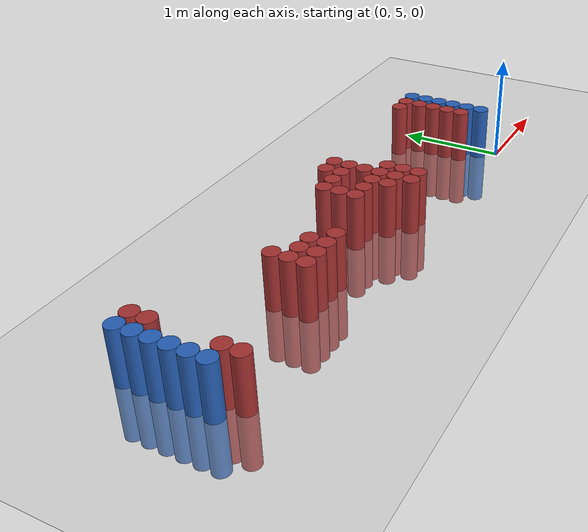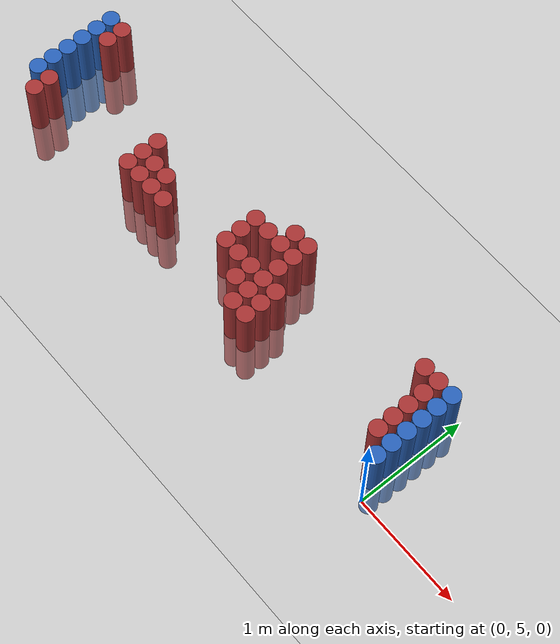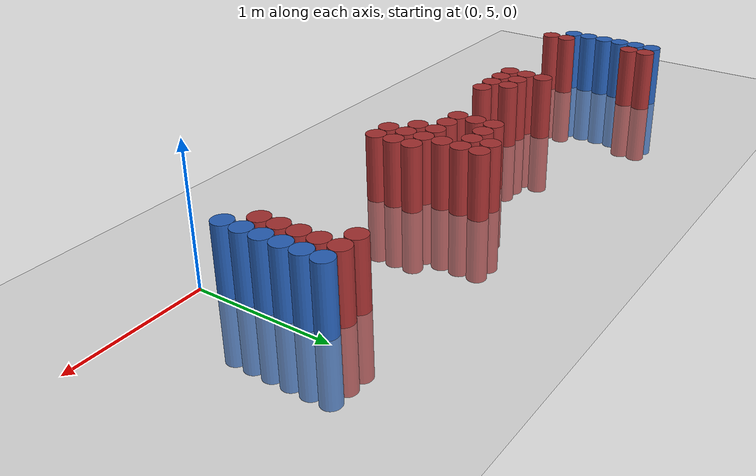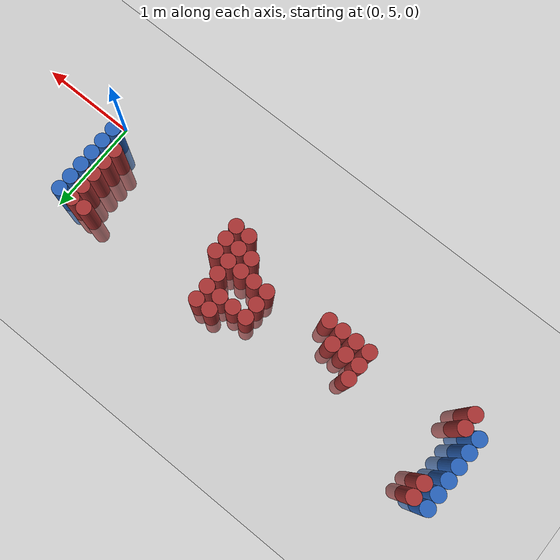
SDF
<sdf version="1.6">
 <world name="default">
  <model name="ground_plane">
   <static>1</static>
   <link name="link">
    <collision name="collision">
     <geometry><plane><normal>0 0 1</normal><size>100 100</size></plane></geometry>
     <surface><friction><ode><mu>100</mu><mu2>50</mu2></ode></friction></surface>
    </collision>
    <visual name="visual">
     <cast_shadows>0</cast_shadows>
     <geometry><plane><normal>0 0 1</normal><size>100 100</size></plane></geometry>
     <material>
      <script><uri>file://media/materials/scripts/gazebo.material</uri><name>Gazebo/Grey</name></script>
     </material>
    </visual>
   </link>
  </model>
  <model name="unit_cylinder_97">
   <static>1</static>
   <pose>-4.425000 5.325000 0.000000 0.000000 0.000000 0.000000</pose>
   <link name="link">
    <inertial>
     <mass>1</mass>
     <inertia><ixx>0.145833</ixx><ixy>0</ixy><ixz>0</ixz><iyy>0.145833</iyy><iyz>0</iyz><izz>0.125</izz></inertia>
    </inertial>
    <collision name="collision">
     <geometry><cylinder><radius>0.075000</radius><length>1</length></cylinder></geometry>
    </collision>
    <visual name="visual">
     <geometry><cylinder><radius>0.075000</radius><length>1</length></cylinder></geometry>
     <material>
      <ambient>0.152000 0.379000 0.720000 1</ambient>
      <diffuse>0.152000 0.379000 0.720000 1</diffuse>
     </material>
     <material>
      <script><name>Gazebo/Grey</name><uri>file://media/materials/scripts/gazebo.material</uri></script>
     </material>
    </visual>
   </link>
  </model>
  <model name="unit_cylinder_98">
   <static>1</static>
   <pose>-4.425000 5.475000 0.000000 0.000000 0.000000 0.000000</pose>
   <link name="link">
    <inertial>
     <mass>1</mass>
     <inertia><ixx>0.145833</ixx><ixy>0</ixy><ixz>0</ixz><iyy>0.145833</iyy><iyz>0</iyz><izz>0.125</izz></inertia>
    </inertial>
    <collision name="collision">
     <geometry><cylinder><radius>0.075000</radius><length>1</length></cylinder></geometry>
    </collision>
    <visual name="visual">
     <geometry><cylinder><radius>0.075000</radius><length>1</length></cylinder></geometry>
     <material>
      <ambient>0.152000 0.379000 0.720000 1</ambient>
      <diffuse>0.152000 0.379000 0.720000 1</diffuse>
     </material>
     <material>
      <script><name>Gazebo/Grey</name><uri>file://media/materials/scripts/gazebo.material</uri></script>
     </material>
    </visual>
   </link>
  </model>
  <model name="unit_cylinder_99">
   <static>1</static>
   <pose>-4.425000 5.625000 0.000000 0.000000 0.000000 0.000000</pose>
   <link name="link">
    <inertial>
     <mass>1</mass>
     <inertia><ixx>0.145833</ixx><ixy>0</ixy><ixz>0</ixz><iyy>0.145833</iyy><iyz>0</iyz><izz>0.125</izz></inertia>
    </inertial>
    <collision name="collision">
     <geometry><cylinder><radius>0.075000</radius><length>1</length></cylinder></geometry>
    </collision>
    <visual name="visual">
     <geometry><cylinder><radius>0.075000</radius><length>1</length></cylinder></geometry>
     <material>
      <ambient>0.152000 0.379000 0.720000 1</ambient>
      <diffuse>0.152000 0.379000 0.720000 1</diffuse>
     </material>
     <material>
      <script><name>Gazebo/Grey</name><uri>file://media/materials/scripts/gazebo.material</uri></script>
     </material>
    </visual>
   </link>
  </model>
  <model name="unit_cylinder_100">
   <static>1</static>
   <pose>-4.425000 5.775000 0.000000 0.000000 0.000000 0.000000</pose>
   <link name="link">
    <inertial>
     <mass>1</mass>
     <inertia><ixx>0.145833</ixx><ixy>0</ixy><ixz>0</ixz><iyy>0.145833</iyy><iyz>0</iyz><izz>0.125</izz></inertia>
    </inertial>
    <collision name="collision">
     <geometry><cylinder><radius>0.075000</radius><length>1</length></cylinder></geometry>
    </collision>
    <visual name="visual">
     <geometry><cylinder><radius>0.075000</radius><length>1</length></cylinder></geometry>
     <material>
      <ambient>0.152000 0.379000 0.720000 1</ambient>
      <diffuse>0.152000 0.379000 0.720000 1</diffuse>
     </material>
     <material>
      <script><name>Gazebo/Grey</name><uri>file://media/materials/scripts/gazebo.material</uri></script>
     </material>
    </visual>
   </link>
  </model>
  <model name="unit_cylinder_101">
   <static>1</static>
   <pose>-4.425000 5.925000 0.000000 0.000000 0.000000 0.000000</pose>
   <link name="link">
    <inertial>
     <mass>1</mass>
     <inertia><ixx>0.145833</ixx><ixy>0</ixy><ixz>0</ixz><iyy>0.145833</iyy><iyz>0</iyz><izz>0.125</izz></inertia>
    </inertial>
    <collision name="collision">
     <geometry><cylinder><radius>0.075000</radius><length>1</length></cylinder></geometry>
    </collision>
    <visual name="visual">
     <geometry><cylinder><radius>0.075000</radius><length>1</length></cylinder></geometry>
     <material>
      <ambient>0.152000 0.379000 0.720000 1</ambient>
      <diffuse>0.152000 0.379000 0.720000 1</diffuse>
     </material>
     <material>
      <script><name>Gazebo/Grey</name><uri>file://media/materials/scripts/gazebo.material</uri></script>
     </material>
    </visual>
   </link>
  </model>
  <model name="unit_cylinder_102">
   <static>1</static>
   <pose>-4.425000 6.075000 0.000000 0.000000 0.000000 0.000000</pose>
   <link name="link">
    <inertial>
     <mass>1</mass>
     <inertia><ixx>0.145833</ixx><ixy>0</ixy><ixz>0</ixz><iyy>0.145833</iyy><iyz>0</iyz><izz>0.125</izz></inertia>
    </inertial>
    <collision name="collision">
     <geometry><cylinder><radius>0.075000</radius><length>1</length></cylinder></geometry>
    </collision>
    <visual name="visual">
     <geometry><cylinder><radius>0.075000</radius><length>1</length></cylinder></geometry>
     <material>
      <ambient>0.152000 0.379000 0.720000 1</ambient>
      <diffuse>0.152000 0.379000 0.720000 1</diffuse>
     </material>
     <material>
      <script><name>Gazebo/Grey</name><uri>file://media/materials/scripts/gazebo.material</uri></script>
     </material>
    </visual>
   </link>
  </model>
  <model name="unit_cylinder_126">
   <static>1</static>
   <pose>-4.275000 5.175000 0.000000 0.000000 0.000000 0.000000</pose>
   <link name="link">
    <inertial>
     <mass>1</mass>
     <inertia><ixx>0.145833</ixx><ixy>0</ixy><ixz>0</ixz><iyy>0.145833</iyy><iyz>0</iyz><izz>0.125</izz></inertia>
    </inertial>
    <collision name="collision">
     <geometry><cylinder><radius>0.075000</radius><length>1</length></cylinder></geometry>
    </collision>
    <visual name="visual">
     <geometry><cylinder><radius>0.075000</radius><length>1</length></cylinder></geometry>
     <material>
      <ambient>0.648000 0.192000 0.192000 1</ambient>
      <diffuse>0.648000 0.192000 0.192000 1</diffuse>
     </material>
     <material>
      <script><name>Gazebo/Grey</name><uri>file://media/materials/scripts/gazebo.material</uri></script>
     </material>
    </visual>
   </link>
  </model>
  <model name="unit_cylinder_127">
   <static>1</static>
   <pose>-4.275000 5.325000 0.000000 0.000000 0.000000 0.000000</pose>
   <link name="link">
    <inertial>
     <mass>1</mass>
     <inertia><ixx>0.145833</ixx><ixy>0</ixy><ixz>0</ixz><iyy>0.145833</iyy><iyz>0</iyz><izz>0.125</izz></inertia>
    </inertial>
    <collision name="collision">
     <geometry><cylinder><radius>0.075000</radius><length>1</length></cylinder></geometry>
    </collision>
    <visual name="visual">
     <geometry><cylinder><radius>0.075000</radius><length>1</length></cylinder></geometry>
     <material>
      <ambient>0.648000 0.192000 0.192000 1</ambient>
      <diffuse>0.648000 0.192000 0.192000 1</diffuse>
     </material>
     <material>
      <script><name>Gazebo/Grey</name><uri>file://media/materials/scripts/gazebo.material</uri></script>
     </material>
    </visual>
   </link>
  </model>
  <model name="unit_cylinder_128">
   <static>1</static>
   <pose>-4.275000 5.925000 0.000000 0.000000 0.000000 0.000000</pose>
   <link name="link">
    <inertial>
     <mass>1</mass>
     <inertia><ixx>0.145833</ixx><ixy>0</ixy><ixz>0</ixz><iyy>0.145833</iyy><iyz>0</iyz><izz>0.125</izz></inertia>
    </inertial>
    <collision name="collision">
     <geometry><cylinder><radius>0.075000</radius><length>1</length></cylinder></geometry>
    </collision>
    <visual name="visual">
     <geometry><cylinder><radius>0.075000</radius><length>1</length></cylinder></geometry>
     <material>
      <ambient>0.648000 0.192000 0.192000 1</ambient>
      <diffuse>0.648000 0.192000 0.192000 1</diffuse>
     </material>
     <material>
      <script><name>Gazebo/Grey</name><uri>file://media/materials/scripts/gazebo.material</uri></script>
     </material>
    </visual>
   </link>
  </model>
  <model name="unit_cylinder_129">
   <static>1</static>
   <pose>-4.275000 6.075000 0.000000 0.000000 0.000000 0.000000</pose>
   <link name="link">
    <inertial>
     <mass>1</mass>
     <inertia><ixx>0.145833</ixx><ixy>0</ixy><ixz>0</ixz><iyy>0.145833</iyy><iyz>0</iyz><izz>0.125</izz></inertia>
    </inertial>
    <collision name="collision">
     <geometry><cylinder><radius>0.075000</radius><length>1</length></cylinder></geometry>
    </collision>
    <visual name="visual">
     <geometry><cylinder><radius>0.075000</radius><length>1</length></cylinder></geometry>
     <material>
      <ambient>0.648000 0.192000 0.192000 1</ambient>
      <diffuse>0.648000 0.192000 0.192000 1</diffuse>
     </material>
     <material>
      <script><name>Gazebo/Grey</name><uri>file://media/materials/scripts/gazebo.material</uri></script>
     </material>
    </visual>
   </link>
  </model>
  <model name="unit_cylinder_154">
   <static>1</static>
   <pose>-3.225000 5.325000 0.000000 0.000000 0.000000 0.000000</pose>
   <link name="link">
    <inertial>
     <mass>1</mass>
     <inertia><ixx>0.145833</ixx><ixy>0</ixy><ixz>0</ixz><iyy>0.145833</iyy><iyz>0</iyz><izz>0.125</izz></inertia>
    </inertial>
    <collision name="collision">
     <geometry><cylinder><radius>0.075000</radius><length>1</length></cylinder></geometry>
    </collision>
    <visual name="visual">
     <geometry><cylinder><radius>0.075000</radius><length>1</length></cylinder></geometry>
     <material>
      <ambient>0.648000 0.192000 0.192000 1</ambient>
      <diffuse>0.648000 0.192000 0.192000 1</diffuse>
     </material>
     <material>
      <script><name>Gazebo/Grey</name><uri>file://media/materials/scripts/gazebo.material</uri></script>
     </material>
    </visual>
   </link>
  </model>
  <model name="unit_cylinder_155">
   <static>1</static>
   <pose>-3.225000 5.475000 0.000000 0.000000 0.000000 0.000000</pose>
   <link name="link">
    <inertial>
     <mass>1</mass>
     <inertia><ixx>0.145833</ixx><ixy>0</ixy><ixz>0</ixz><iyy>0.145833</iyy><iyz>0</iyz><izz>0.125</izz></inertia>
    </inertial>
    <collision name="collision">
     <geometry><cylinder><radius>0.075000</radius><length>1</length></cylinder></geometry>
    </collision>
    <visual name="visual">
     <geometry><cylinder><radius>0.075000</radius><length>1</length></cylinder></geometry>
     <material>
      <ambient>0.648000 0.192000 0.192000 1</ambient>
      <diffuse>0.648000 0.192000 0.192000 1</diffuse>
     </material>
     <material>
      <script><name>Gazebo/Grey</name><uri>file://media/materials/scripts/gazebo.material</uri></script>
     </material>
    </visual>
   </link>
  </model>
  <model name="unit_cylinder_156">
   <static>1</static>
   <pose>-3.225000 5.625000 0.000000 0.000000 0.000000 0.000000</pose>
   <link name="link">
    <inertial>
     <mass>1</mass>
     <inertia><ixx>0.145833</ixx><ixy>0</ixy><ixz>0</ixz><iyy>0.145833</iyy><iyz>0</iyz><izz>0.125</izz></inertia>
    </inertial>
    <collision name="collision">
     <geometry><cylinder><radius>0.075000</radius><length>1</length></cylinder></geometry>
    </collision>
    <visual name="visual">
     <geometry><cylinder><radius>0.075000</radius><length>1</length></cylinder></geometry>
     <material>
      <ambient>0.648000 0.192000 0.192000 1</ambient>
      <diffuse>0.648000 0.192000 0.192000 1</diffuse>
     </material>
     <material>
      <script><name>Gazebo/Grey</name><uri>file://media/materials/scripts/gazebo.material</uri></script>
     </material>
    </visual>
   </link>
  </model>
  <model name="unit_cylinder_163">
   <static>1</static>
   <pose>-3.075000 5.325000 0.000000 0.000000 0.000000 0.000000</pose>
   <link name="link">
    <inertial>
     <mass>1</mass>
     <inertia><ixx>0.145833</ixx><ixy>0</ixy><ixz>0</ixz><iyy>0.145833</iyy><iyz>0</iyz><izz>0.125</izz></inertia>
    </inertial>
    <collision name="collision">
     <geometry><cylinder><radius>0.075000</radius><length>1</length></cylinder></geometry>
    </collision>
    <visual name="visual">
     <geometry><cylinder><radius>0.075000</radius><length>1</length></cylinder></geometry>
     <material>
      <ambient>0.648000 0.192000 0.192000 1</ambient>
      <diffuse>0.648000 0.192000 0.192000 1</diffuse>
     </material>
     <material>
      <script><name>Gazebo/Grey</name><uri>file://media/materials/scripts/gazebo.material</uri></script>
     </material>
    </visual>
   </link>
  </model>
  <model name="unit_cylinder_164">
   <static>1</static>
   <pose>-3.075000 5.475000 0.000000 0.000000 0.000000 0.000000</pose>
   <link name="link">
    <inertial>
     <mass>1</mass>
     <inertia><ixx>0.145833</ixx><ixy>0</ixy><ixz>0</ixz><iyy>0.145833</iyy><iyz>0</iyz><izz>0.125</izz></inertia>
    </inertial>
    <collision name="collision">
     <geometry><cylinder><radius>0.075000</radius><length>1</length></cylinder></geometry>
    </collision>
    <visual name="visual">
     <geometry><cylinder><radius>0.075000</radius><length>1</length></cylinder></geometry>
     <material>
      <ambient>0.648000 0.192000 0.192000 1</ambient>
      <diffuse>0.648000 0.192000 0.192000 1</diffuse>
     </material>
     <material>
      <script><name>Gazebo/Grey</name><uri>file://media/materials/scripts/gazebo.material</uri></script>
     </material>
    </visual>
   </link>
  </model>
  <model name="unit_cylinder_168">
   <static>1</static>
   <pose>-2.925000 5.325000 0.000000 0.000000 0.000000 0.000000</pose>
   <link name="link">
    <inertial>
     <mass>1</mass>
     <inertia><ixx>0.145833</ixx><ixy>0</ixy><ixz>0</ixz><iyy>0.145833</iyy><iyz>0</iyz><izz>0.125</izz></inertia>
    </inertial>
    <collision name="collision">
     <geometry><cylinder><radius>0.075000</radius><length>1</length></cylinder></geometry>
    </collision>
    <visual name="visual">
     <geometry><cylinder><radius>0.075000</radius><length>1</length></cylinder></geometry>
     <material>
      <ambient>0.648000 0.192000 0.192000 1</ambient>
      <diffuse>0.648000 0.192000 0.192000 1</diffuse>
     </material>
     <material>
      <script><name>Gazebo/Grey</name><uri>file://media/materials/scripts/gazebo.material</uri></script>
     </material>
    </visual>
   </link>
  </model>
  <model name="unit_cylinder_169">
   <static>1</static>
   <pose>-2.925000 5.475000 0.000000 0.000000 0.000000 0.000000</pose>
   <link name="link">
    <inertial>
     <mass>1</mass>
     <inertia><ixx>0.145833</ixx><ixy>0</ixy><ixz>0</ixz><iyy>0.145833</iyy><iyz>0</iyz><izz>0.125</izz></inertia>
    </inertial>
    <collision name="collision">
     <geometry><cylinder><radius>0.075000</radius><length>1</length></cylinder></geometry>
    </collision>
    <visual name="visual">
     <geometry><cylinder><radius>0.075000</radius><length>1</length></cylinder></geometry>
     <material>
      <ambient>0.648000 0.192000 0.192000 1</ambient>
      <diffuse>0.648000 0.192000 0.192000 1</diffuse>
     </material>
     <material>
      <script><name>Gazebo/Grey</name><uri>file://media/materials/scripts/gazebo.material</uri></script>
     </material>
    </visual>
   </link>
  </model>
  <model name="unit_cylinder_170">
   <static>1</static>
   <pose>-2.775000 5.325000 0.000000 0.000000 0.000000 0.000000</pose>
   <link name="link">
    <inertial>
     <mass>1</mass>
     <inertia><ixx>0.145833</ixx><ixy>0</ixy><ixz>0</ixz><iyy>0.145833</iyy><iyz>0</iyz><izz>0.125</izz></inertia>
    </inertial>
    <collision name="collision">
     <geometry><cylinder><radius>0.075000</radius><length>1</length></cylinder></geometry>
    </collision>
    <visual name="visual">
     <geometry><cylinder><radius>0.075000</radius><length>1</length></cylinder></geometry>
     <material>
      <ambient>0.648000 0.192000 0.192000 1</ambient>
      <diffuse>0.648000 0.192000 0.192000 1</diffuse>
     </material>
     <material>
      <script><name>Gazebo/Grey</name><uri>file://media/materials/scripts/gazebo.material</uri></script>
     </material>
    </visual>
   </link>
  </model>
  <model name="unit_cylinder_176">
   <static>1</static>
   <pose>-2.175000 5.475000 0.000000 0.000000 0.000000 0.000000</pose>
   <link name="link">
    <inertial>
     <mass>1</mass>
     <inertia><ixx>0.145833</ixx><ixy>0</ixy><ixz>0</ixz><iyy>0.145833</iyy><iyz>0</iyz><izz>0.125</izz></inertia>
    </inertial>
    <collision name="collision">
     <geometry><cylinder><radius>0.075000</radius><length>1</length></cylinder></geometry>
    </collision>
    <visual name="visual">
     <geometry><cylinder><radius>0.075000</radius><length>1</length></cylinder></geometry>
     <material>
      <ambient>0.648000 0.192000 0.192000 1</ambient>
      <diffuse>0.648000 0.192000 0.192000 1</diffuse>
     </material>
     <material>
      <script><name>Gazebo/Grey</name><uri>file://media/materials/scripts/gazebo.material</uri></script>
     </material>
    </visual>
   </link>
  </model>
  <model name="unit_cylinder_177">
   <static>1</static>
   <pose>-2.175000 5.625000 0.000000 0.000000 0.000000 0.000000</pose>
   <link name="link">
    <inertial>
     <mass>1</mass>
     <inertia><ixx>0.145833</ixx><ixy>0</ixy><ixz>0</ixz><iyy>0.145833</iyy><iyz>0</iyz><izz>0.125</izz></inertia>
    </inertial>
    <collision name="collision">
     <geometry><cylinder><radius>0.075000</radius><length>1</length></cylinder></geometry>
    </collision>
    <visual name="visual">
     <geometry><cylinder><radius>0.075000</radius><length>1</length></cylinder></geometry>
     <material>
      <ambient>0.648000 0.192000 0.192000 1</ambient>
      <diffuse>0.648000 0.192000 0.192000 1</diffuse>
     </material>
     <material>
      <script><name>Gazebo/Grey</name><uri>file://media/materials/scripts/gazebo.material</uri></script>
     </material>
    </visual>
   </link>
  </model>
  <model name="unit_cylinder_178">
   <static>1</static>
   <pose>-2.175000 5.775000 0.000000 0.000000 0.000000 0.000000</pose>
   <link name="link">
    <inertial>
     <mass>1</mass>
     <inertia><ixx>0.145833</ixx><ixy>0</ixy><ixz>0</ixz><iyy>0.145833</iyy><iyz>0</iyz><izz>0.125</izz></inertia>
    </inertial>
    <collision name="collision">
     <geometry><cylinder><radius>0.075000</radius><length>1</length></cylinder></geometry>
    </collision>
    <visual name="visual">
     <geometry><cylinder><radius>0.075000</radius><length>1</length></cylinder></geometry>
     <material>
      <ambient>0.648000 0.192000 0.192000 1</ambient>
      <diffuse>0.648000 0.192000 0.192000 1</diffuse>
     </material>
     <material>
      <script><name>Gazebo/Grey</name><uri>file://media/materials/scripts/gazebo.material</uri></script>
     </material>
    </visual>
   </link>
  </model>
  <model name="unit_cylinder_181">
   <static>1</static>
   <pose>-2.025000 5.475000 0.000000 0.000000 0.000000 0.000000</pose>
   <link name="link">
    <inertial>
     <mass>1</mass>
     <inertia><ixx>0.145833</ixx><ixy>0</ixy><ixz>0</ixz><iyy>0.145833</iyy><iyz>0</iyz><izz>0.125</izz></inertia>
    </inertial>
    <collision name="collision">
     <geometry><cylinder><radius>0.075000</radius><length>1</length></cylinder></geometry>
    </collision>
    <visual name="visual">
     <geometry><cylinder><radius>0.075000</radius><length>1</length></cylinder></geometry>
     <material>
      <ambient>0.648000 0.192000 0.192000 1</ambient>
      <diffuse>0.648000 0.192000 0.192000 1</diffuse>
     </material>
     <material>
      <script><name>Gazebo/Grey</name><uri>file://media/materials/scripts/gazebo.material</uri></script>
     </material>
    </visual>
   </link>
  </model>
  <model name="unit_cylinder_182">
   <static>1</static>
   <pose>-2.025000 5.775000 0.000000 0.000000 0.000000 0.000000</pose>
   <link name="link">
    <inertial>
     <mass>1</mass>
     <inertia><ixx>0.145833</ixx><ixy>0</ixy><ixz>0</ixz><iyy>0.145833</iyy><iyz>0</iyz><izz>0.125</izz></inertia>
    </inertial>
    <collision name="collision">
     <geometry><cylinder><radius>0.075000</radius><length>1</length></cylinder></geometry>
    </collision>
    <visual name="visual">
     <geometry><cylinder><radius>0.075000</radius><length>1</length></cylinder></geometry>
     <material>
      <ambient>0.648000 0.192000 0.192000 1</ambient>
      <diffuse>0.648000 0.192000 0.192000 1</diffuse>
     </material>
     <material>
      <script><name>Gazebo/Grey</name><uri>file://media/materials/scripts/gazebo.material</uri></script>
     </material>
    </visual>
   </link>
  </model>
  <model name="unit_cylinder_187">
   <static>1</static>
   <pose>-1.875000 5.325000 0.000000 0.000000 0.000000 0.000000</pose>
   <link name="link">
    <inertial>
     <mass>1</mass>
     <inertia><ixx>0.145833</ixx><ixy>0</ixy><ixz>0</ixz><iyy>0.145833</iyy><iyz>0</iyz><izz>0.125</izz></inertia>
    </inertial>
    <collision name="collision">
     <geometry><cylinder><radius>0.075000</radius><length>1</length></cylinder></geometry>
    </collision>
    <visual name="visual">
     <geometry><cylinder><radius>0.075000</radius><length>1</length></cylinder></geometry>
     <material>
      <ambient>0.648000 0.192000 0.192000 1</ambient>
      <diffuse>0.648000 0.192000 0.192000 1</diffuse>
     </material>
     <material>
      <script><name>Gazebo/Grey</name><uri>file://media/materials/scripts/gazebo.material</uri></script>
     </material>
    </visual>
   </link>
  </model>
  <model name="unit_cylinder_188">
   <static>1</static>
   <pose>-1.875000 5.475000 0.000000 0.000000 0.000000 0.000000</pose>
   <link name="link">
    <inertial>
     <mass>1</mass>
     <inertia><ixx>0.145833</ixx><ixy>0</ixy><ixz>0</ixz><iyy>0.145833</iyy><iyz>0</iyz><izz>0.125</izz></inertia>
    </inertial>
    <collision name="collision">
     <geometry><cylinder><radius>0.075000</radius><length>1</length></cylinder></geometry>
    </collision>
    <visual name="visual">
     <geometry><cylinder><radius>0.075000</radius><length>1</length></cylinder></geometry>
     <material>
      <ambient>0.648000 0.192000 0.192000 1</ambient>
      <diffuse>0.648000 0.192000 0.192000 1</diffuse>
     </material>
     <material>
      <script><name>Gazebo/Grey</name><uri>file://media/materials/scripts/gazebo.material</uri></script>
     </material>
    </visual>
   </link>
  </model>
  <model name="unit_cylinder_189">
   <static>1</static>
   <pose>-1.875000 5.775000 0.000000 0.000000 0.000000 0.000000</pose>
   <link name="link">
    <inertial>
     <mass>1</mass>
     <inertia><ixx>0.145833</ixx><ixy>0</ixy><ixz>0</ixz><iyy>0.145833</iyy><iyz>0</iyz><izz>0.125</izz></inertia>
    </inertial>
    <collision name="collision">
     <geometry><cylinder><radius>0.075000</radius><length>1</length></cylinder></geometry>
    </collision>
    <visual name="visual">
     <geometry><cylinder><radius>0.075000</radius><length>1</length></cylinder></geometry>
     <material>
      <ambient>0.648000 0.192000 0.192000 1</ambient>
      <diffuse>0.648000 0.192000 0.192000 1</diffuse>
     </material>
     <material>
      <script><name>Gazebo/Grey</name><uri>file://media/materials/scripts/gazebo.material</uri></script>
     </material>
    </visual>
   </link>
  </model>
  <model name="unit_cylinder_190">
   <static>1</static>
   <pose>-1.875000 5.925000 0.000000 0.000000 0.000000 0.000000</pose>
   <link name="link">
    <inertial>
     <mass>1</mass>
     <inertia><ixx>0.145833</ixx><ixy>0</ixy><ixz>0</ixz><iyy>0.145833</iyy><iyz>0</iyz><izz>0.125</izz></inertia>
    </inertial>
    <collision name="collision">
     <geometry><cylinder><radius>0.075000</radius><length>1</length></cylinder></geometry>
    </collision>
    <visual name="visual">
     <geometry><cylinder><radius>0.075000</radius><length>1</length></cylinder></geometry>
     <material>
      <ambient>0.648000 0.192000 0.192000 1</ambient>
      <diffuse>0.648000 0.192000 0.192000 1</diffuse>
     </material>
     <material>
      <script><name>Gazebo/Grey</name><uri>file://media/materials/scripts/gazebo.material</uri></script>
     </material>
    </visual>
   </link>
  </model>
  <model name="unit_cylinder_195">
   <static>1</static>
   <pose>-1.725000 5.175000 0.000000 0.000000 0.000000 0.000000</pose>
   <link name="link">
    <inertial>
     <mass>1</mass>
     <inertia><ixx>0.145833</ixx><ixy>0</ixy><ixz>0</ixz><iyy>0.145833</iyy><iyz>0</iyz><izz>0.125</izz></inertia>
    </inertial>
    <collision name="collision">
     <geometry><cylinder><radius>0.075000</radius><length>1</length></cylinder></geometry>
    </collision>
    <visual name="visual">
     <geometry><cylinder><radius>0.075000</radius><length>1</length></cylinder></geometry>
     <material>
      <ambient>0.648000 0.192000 0.192000 1</ambient>
      <diffuse>0.648000 0.192000 0.192000 1</diffuse>
     </material>
     <material>
      <script><name>Gazebo/Grey</name><uri>file://media/materials/scripts/gazebo.material</uri></script>
     </material>
    </visual>
   </link>
  </model>
  <model name="unit_cylinder_196">
   <static>1</static>
   <pose>-1.725000 5.325000 0.000000 0.000000 0.000000 0.000000</pose>
   <link name="link">
    <inertial>
     <mass>1</mass>
     <inertia><ixx>0.145833</ixx><ixy>0</ixy><ixz>0</ixz><iyy>0.145833</iyy><iyz>0</iyz><izz>0.125</izz></inertia>
    </inertial>
    <collision name="collision">
     <geometry><cylinder><radius>0.075000</radius><length>1</length></cylinder></geometry>
    </collision>
    <visual name="visual">
     <geometry><cylinder><radius>0.075000</radius><length>1</length></cylinder></geometry>
     <material>
      <ambient>0.648000 0.192000 0.192000 1</ambient>
      <diffuse>0.648000 0.192000 0.192000 1</diffuse>
     </material>
     <material>
      <script><name>Gazebo/Grey</name><uri>file://media/materials/scripts/gazebo.material</uri></script>
     </material>
    </visual>
   </link>
  </model>
  <model name="unit_cylinder_197">
   <static>1</static>
   <pose>-1.725000 5.475000 0.000000 0.000000 0.000000 0.000000</pose>
   <link name="link">
    <inertial>
     <mass>1</mass>
     <inertia><ixx>0.145833</ixx><ixy>0</ixy><ixz>0</ixz><iyy>0.145833</iyy><iyz>0</iyz><izz>0.125</izz></inertia>
    </inertial>
    <collision name="collision">
     <geometry><cylinder><radius>0.075000</radius><length>1</length></cylinder></geometry>
    </collision>
    <visual name="visual">
     <geometry><cylinder><radius>0.075000</radius><length>1</length></cylinder></geometry>
     <material>
      <ambient>0.648000 0.192000 0.192000 1</ambient>
      <diffuse>0.648000 0.192000 0.192000 1</diffuse>
     </material>
     <material>
      <script><name>Gazebo/Grey</name><uri>file://media/materials/scripts/gazebo.material</uri></script>
     </material>
    </visual>
   </link>
  </model>
  <model name="unit_cylinder_198">
   <static>1</static>
   <pose>-1.725000 5.625000 0.000000 0.000000 0.000000 0.000000</pose>
   <link name="link">
    <inertial>
     <mass>1</mass>
     <inertia><ixx>0.145833</ixx><ixy>0</ixy><ixz>0</ixz><iyy>0.145833</iyy><iyz>0</iyz><izz>0.125</izz></inertia>
    </inertial>
    <collision name="collision">
     <geometry><cylinder><radius>0.075000</radius><length>1</length></cylinder></geometry>
    </collision>
    <visual name="visual">
     <geometry><cylinder><radius>0.075000</radius><length>1</length></cylinder></geometry>
     <material>
      <ambient>0.648000 0.192000 0.192000 1</ambient>
      <diffuse>0.648000 0.192000 0.192000 1</diffuse>
     </material>
     <material>
      <script><name>Gazebo/Grey</name><uri>file://media/materials/scripts/gazebo.material</uri></script>
     </material>
    </visual>
   </link>
  </model>
  <model name="unit_cylinder_199">
   <static>1</static>
   <pose>-1.725000 5.775000 0.000000 0.000000 0.000000 0.000000</pose>
   <link name="link">
    <inertial>
     <mass>1</mass>
     <inertia><ixx>0.145833</ixx><ixy>0</ixy><ixz>0</ixz><iyy>0.145833</iyy><iyz>0</iyz><izz>0.125</izz></inertia>
    </inertial>
    <collision name="collision">
     <geometry><cylinder><radius>0.075000</radius><length>1</length></cylinder></geometry>
    </collision>
    <visual name="visual">
     <geometry><cylinder><radius>0.075000</radius><length>1</length></cylinder></geometry>
     <material>
      <ambient>0.648000 0.192000 0.192000 1</ambient>
      <diffuse>0.648000 0.192000 0.192000 1</diffuse>
     </material>
     <material>
      <script><name>Gazebo/Grey</name><uri>file://media/materials/scripts/gazebo.material</uri></script>
     </material>
    </visual>
   </link>
  </model>
  <model name="unit_cylinder_200">
   <static>1</static>
   <pose>-1.725000 5.925000 0.000000 0.000000 0.000000 0.000000</pose>
   <link name="link">
    <inertial>
     <mass>1</mass>
     <inertia><ixx>0.145833</ixx><ixy>0</ixy><ixz>0</ixz><iyy>0.145833</iyy><iyz>0</iyz><izz>0.125</izz></inertia>
    </inertial>
    <collision name="collision">
     <geometry><cylinder><radius>0.075000</radius><length>1</length></cylinder></geometry>
    </collision>
    <visual name="visual">
     <geometry><cylinder><radius>0.075000</radius><length>1</length></cylinder></geometry>
     <material>
      <ambient>0.648000 0.192000 0.192000 1</ambient>
      <diffuse>0.648000 0.192000 0.192000 1</diffuse>
     </material>
     <material>
      <script><name>Gazebo/Grey</name><uri>file://media/materials/scripts/gazebo.material</uri></script>
     </material>
    </visual>
   </link>
  </model>
  <model name="unit_cylinder_208">
   <static>1</static>
   <pose>-1.575000 5.175000 0.000000 0.000000 0.000000 0.000000</pose>
   <link name="link">
    <inertial>
     <mass>1</mass>
     <inertia><ixx>0.145833</ixx><ixy>0</ixy><ixz>0</ixz><iyy>0.145833</iyy><iyz>0</iyz><izz>0.125</izz></inertia>
    </inertial>
    <collision name="collision">
     <geometry><cylinder><radius>0.075000</radius><length>1</length></cylinder></geometry>
    </collision>
    <visual name="visual">
     <geometry><cylinder><radius>0.075000</radius><length>1</length></cylinder></geometry>
     <material>
      <ambient>0.648000 0.192000 0.192000 1</ambient>
      <diffuse>0.648000 0.192000 0.192000 1</diffuse>
     </material>
     <material>
      <script><name>Gazebo/Grey</name><uri>file://media/materials/scripts/gazebo.material</uri></script>
     </material>
    </visual>
   </link>
  </model>
  <model name="unit_cylinder_209">
   <static>1</static>
   <pose>-1.575000 5.325000 0.000000 0.000000 0.000000 0.000000</pose>
   <link name="link">
    <inertial>
     <mass>1</mass>
     <inertia><ixx>0.145833</ixx><ixy>0</ixy><ixz>0</ixz><iyy>0.145833</iyy><iyz>0</iyz><izz>0.125</izz></inertia>
    </inertial>
    <collision name="collision">
     <geometry><cylinder><radius>0.075000</radius><length>1</length></cylinder></geometry>
    </collision>
    <visual name="visual">
     <geometry><cylinder><radius>0.075000</radius><length>1</length></cylinder></geometry>
     <material>
      <ambient>0.648000 0.192000 0.192000 1</ambient>
      <diffuse>0.648000 0.192000 0.192000 1</diffuse>
     </material>
     <material>
      <script><name>Gazebo/Grey</name><uri>file://media/materials/scripts/gazebo.material</uri></script>
     </material>
    </visual>
   </link>
  </model>
  <model name="unit_cylinder_210">
   <static>1</static>
   <pose>-1.575000 5.475000 0.000000 0.000000 0.000000 0.000000</pose>
   <link name="link">
    <inertial>
     <mass>1</mass>
     <inertia><ixx>0.145833</ixx><ixy>0</ixy><ixz>0</ixz><iyy>0.145833</iyy><iyz>0</iyz><izz>0.125</izz></inertia>
    </inertial>
    <collision name="collision">
     <geometry><cylinder><radius>0.075000</radius><length>1</length></cylinder></geometry>
    </collision>
    <visual name="visual">
     <geometry><cylinder><radius>0.075000</radius><length>1</length></cylinder></geometry>
     <material>
      <ambient>0.648000 0.192000 0.192000 1</ambient>
      <diffuse>0.648000 0.192000 0.192000 1</diffuse>
     </material>
     <material>
      <script><name>Gazebo/Grey</name><uri>file://media/materials/scripts/gazebo.material</uri></script>
     </material>
    </visual>
   </link>
  </model>
  <model name="unit_cylinder_242">
   <static>1</static>
   <pose>-0.375000 5.925000 0.000000 0.000000 0.000000 0.000000</pose>
   <link name="link">
    <inertial>
     <mass>1</mass>
     <inertia><ixx>0.145833</ixx><ixy>0</ixy><ixz>0</ixz><iyy>0.145833</iyy><iyz>0</iyz><izz>0.125</izz></inertia>
    </inertial>
    <collision name="collision">
     <geometry><cylinder><radius>0.075000</radius><length>1</length></cylinder></geometry>
    </collision>
    <visual name="visual">
     <geometry><cylinder><radius>0.075000</radius><length>1</length></cylinder></geometry>
     <material>
      <ambient>0.648000 0.192000 0.192000 1</ambient>
      <diffuse>0.648000 0.192000 0.192000 1</diffuse>
     </material>
     <material>
      <script><name>Gazebo/Grey</name><uri>file://media/materials/scripts/gazebo.material</uri></script>
     </material>
    </visual>
   </link>
  </model>
  <model name="unit_cylinder_246">
   <static>1</static>
   <pose>-0.225000 5.325000 0.000000 0.000000 0.000000 0.000000</pose>
   <link name="link">
    <inertial>
     <mass>1</mass>
     <inertia><ixx>0.145833</ixx><ixy>0</ixy><ixz>0</ixz><iyy>0.145833</iyy><iyz>0</iyz><izz>0.125</izz></inertia>
    </inertial>
    <collision name="collision">
     <geometry><cylinder><radius>0.075000</radius><length>1</length></cylinder></geometry>
    </collision>
    <visual name="visual">
     <geometry><cylinder><radius>0.075000</radius><length>1</length></cylinder></geometry>
     <material>
      <ambient>0.648000 0.192000 0.192000 1</ambient>
      <diffuse>0.648000 0.192000 0.192000 1</diffuse>
     </material>
     <material>
      <script><name>Gazebo/Grey</name><uri>file://media/materials/scripts/gazebo.material</uri></script>
     </material>
    </visual>
   </link>
  </model>
  <model name="unit_cylinder_247">
   <static>1</static>
   <pose>-0.225000 5.475000 0.000000 0.000000 0.000000 0.000000</pose>
   <link name="link">
    <inertial>
     <mass>1</mass>
     <inertia><ixx>0.145833</ixx><ixy>0</ixy><ixz>0</ixz><iyy>0.145833</iyy><iyz>0</iyz><izz>0.125</izz></inertia>
    </inertial>
    <collision name="collision">
     <geometry><cylinder><radius>0.075000</radius><length>1</length></cylinder></geometry>
    </collision>
    <visual name="visual">
     <geometry><cylinder><radius>0.075000</radius><length>1</length></cylinder></geometry>
     <material>
      <ambient>0.648000 0.192000 0.192000 1</ambient>
      <diffuse>0.648000 0.192000 0.192000 1</diffuse>
     </material>
     <material>
      <script><name>Gazebo/Grey</name><uri>file://media/materials/scripts/gazebo.material</uri></script>
     </material>
    </visual>
   </link>
  </model>
  <model name="unit_cylinder_248">
   <static>1</static>
   <pose>-0.225000 5.625000 0.000000 0.000000 0.000000 0.000000</pose>
   <link name="link">
    <inertial>
     <mass>1</mass>
     <inertia><ixx>0.145833</ixx><ixy>0</ixy><ixz>0</ixz><iyy>0.145833</iyy><iyz>0</iyz><izz>0.125</izz></inertia>
    </inertial>
    <collision name="collision">
     <geometry><cylinder><radius>0.075000</radius><length>1</length></cylinder></geometry>
    </collision>
    <visual name="visual">
     <geometry><cylinder><radius>0.075000</radius><length>1</length></cylinder></geometry>
     <material>
      <ambient>0.648000 0.192000 0.192000 1</ambient>
      <diffuse>0.648000 0.192000 0.192000 1</diffuse>
     </material>
     <material>
      <script><name>Gazebo/Grey</name><uri>file://media/materials/scripts/gazebo.material</uri></script>
     </material>
    </visual>
   </link>
  </model>
  <model name="unit_cylinder_249">
   <static>1</static>
   <pose>-0.225000 5.775000 0.000000 0.000000 0.000000 0.000000</pose>
   <link name="link">
    <inertial>
     <mass>1</mass>
     <inertia><ixx>0.145833</ixx><ixy>0</ixy><ixz>0</ixz><iyy>0.145833</iyy><iyz>0</iyz><izz>0.125</izz></inertia>
    </inertial>
    <collision name="collision">
     <geometry><cylinder><radius>0.075000</radius><length>1</length></cylinder></geometry>
    </collision>
    <visual name="visual">
     <geometry><cylinder><radius>0.075000</radius><length>1</length></cylinder></geometry>
     <material>
      <ambient>0.648000 0.192000 0.192000 1</ambient>
      <diffuse>0.648000 0.192000 0.192000 1</diffuse>
     </material>
     <material>
      <script><name>Gazebo/Grey</name><uri>file://media/materials/scripts/gazebo.material</uri></script>
     </material>
    </visual>
   </link>
  </model>
  <model name="unit_cylinder_250">
   <static>1</static>
   <pose>-0.225000 5.925000 0.000000 0.000000 0.000000 0.000000</pose>
   <link name="link">
    <inertial>
     <mass>1</mass>
     <inertia><ixx>0.145833</ixx><ixy>0</ixy><ixz>0</ixz><iyy>0.145833</iyy><iyz>0</iyz><izz>0.125</izz></inertia>
    </inertial>
    <collision name="collision">
     <geometry><cylinder><radius>0.075000</radius><length>1</length></cylinder></geometry>
    </collision>
    <visual name="visual">
     <geometry><cylinder><radius>0.075000</radius><length>1</length></cylinder></geometry>
     <material>
      <ambient>0.648000 0.192000 0.192000 1</ambient>
      <diffuse>0.648000 0.192000 0.192000 1</diffuse>
     </material>
     <material>
      <script><name>Gazebo/Grey</name><uri>file://media/materials/scripts/gazebo.material</uri></script>
     </material>
    </visual>
   </link>
  </model>
  <model name="unit_cylinder_259">
   <static>1</static>
   <pose>-0.075000 5.175000 0.000000 0.000000 0.000000 0.000000</pose>
   <link name="link">
    <inertial>
     <mass>1</mass>
     <inertia><ixx>0.145833</ixx><ixy>0</ixy><ixz>0</ixz><iyy>0.145833</iyy><iyz>0</iyz><izz>0.125</izz></inertia>
    </inertial>
    <collision name="collision">
     <geometry><cylinder><radius>0.075000</radius><length>1</length></cylinder></geometry>
    </collision>
    <visual name="visual">
     <geometry><cylinder><radius>0.075000</radius><length>1</length></cylinder></geometry>
     <material>
      <ambient>0.152000 0.379000 0.720000 1</ambient>
      <diffuse>0.152000 0.379000 0.720000 1</diffuse>
     </material>
     <material>
      <script><name>Gazebo/Grey</name><uri>file://media/materials/scripts/gazebo.material</uri></script>
     </material>
    </visual>
   </link>
  </model>
  <model name="unit_cylinder_260">
   <static>1</static>
   <pose>-0.075000 5.325000 0.000000 0.000000 0.000000 0.000000</pose>
   <link name="link">
    <inertial>
     <mass>1</mass>
     <inertia><ixx>0.145833</ixx><ixy>0</ixy><ixz>0</ixz><iyy>0.145833</iyy><iyz>0</iyz><izz>0.125</izz></inertia>
    </inertial>
    <collision name="collision">
     <geometry><cylinder><radius>0.075000</radius><length>1</length></cylinder></geometry>
    </collision>
    <visual name="visual">
     <geometry><cylinder><radius>0.075000</radius><length>1</length></cylinder></geometry>
     <material>
      <ambient>0.152000 0.379000 0.720000 1</ambient>
      <diffuse>0.152000 0.379000 0.720000 1</diffuse>
     </material>
     <material>
      <script><name>Gazebo/Grey</name><uri>file://media/materials/scripts/gazebo.material</uri></script>
     </material>
    </visual>
   </link>
  </model>
  <model name="unit_cylinder_261">
   <static>1</static>
   <pose>-0.075000 5.475000 0.000000 0.000000 0.000000 0.000000</pose>
   <link name="link">
    <inertial>
     <mass>1</mass>
     <inertia><ixx>0.145833</ixx><ixy>0</ixy><ixz>0</ixz><iyy>0.145833</iyy><iyz>0</iyz><izz>0.125</izz></inertia>
    </inertial>
    <collision name="collision">
     <geometry><cylinder><radius>0.075000</radius><length>1</length></cylinder></geometry>
    </collision>
    <visual name="visual">
     <geometry><cylinder><radius>0.075000</radius><length>1</length></cylinder></geometry>
     <material>
      <ambient>0.152000 0.379000 0.720000 1</ambient>
      <diffuse>0.152000 0.379000 0.720000 1</diffuse>
     </material>
     <material>
      <script><name>Gazebo/Grey</name><uri>file://media/materials/scripts/gazebo.material</uri></script>
     </material>
    </visual>
   </link>
  </model>
  <model name="unit_cylinder_262">
   <static>1</static>
   <pose>-0.075000 5.625000 0.000000 0.000000 0.000000 0.000000</pose>
   <link name="link">
    <inertial>
     <mass>1</mass>
     <inertia><ixx>0.145833</ixx><ixy>0</ixy><ixz>0</ixz><iyy>0.145833</iyy><iyz>0</iyz><izz>0.125</izz></inertia>
    </inertial>
    <collision name="collision">
     <geometry><cylinder><radius>0.075000</radius><length>1</length></cylinder></geometry>
    </collision>
    <visual name="visual">
     <geometry><cylinder><radius>0.075000</radius><length>1</length></cylinder></geometry>
     <material>
      <ambient>0.152000 0.379000 0.720000 1</ambient>
      <diffuse>0.152000 0.379000 0.720000 1</diffuse>
     </material>
     <material>
      <script><name>Gazebo/Grey</name><uri>file://media/materials/scripts/gazebo.material</uri></script>
     </material>
    </visual>
   </link>
  </model>
  <model name="unit_cylinder_263">
   <static>1</static>
   <pose>-0.075000 5.775000 0.000000 0.000000 0.000000 0.000000</pose>
   <link name="link">
    <inertial>
     <mass>1</mass>
     <inertia><ixx>0.145833</ixx><ixy>0</ixy><ixz>0</ixz><iyy>0.145833</iyy><iyz>0</iyz><izz>0.125</izz></inertia>
    </inertial>
    <collision name="collision">
     <geometry><cylinder><radius>0.075000</radius><length>1</length></cylinder></geometry>
    </collision>
    <visual name="visual">
     <geometry><cylinder><radius>0.075000</radius><length>1</length></cylinder></geometry>
     <material>
      <ambient>0.152000 0.379000 0.720000 1</ambient>
      <diffuse>0.152000 0.379000 0.720000 1</diffuse>
     </material>
     <material>
      <script><name>Gazebo/Grey</name><uri>file://media/materials/scripts/gazebo.material</uri></script>
     </material>
    </visual>
   </link>
  </model>
  <model name="unit_cylinder_264">
   <static>1</static>
   <pose>-0.075000 5.925000 0.000000 0.000000 0.000000 0.000000</pose>
   <link name="link">
    <inertial>
     <mass>1</mass>
     <inertia><ixx>0.145833</ixx><ixy>0</ixy><ixz>0</ixz><iyy>0.145833</iyy><iyz>0</iyz><izz>0.125</izz></inertia>
    </inertial>
    <collision name="collision">
     <geometry><cylinder><radius>0.075000</radius><length>1</length></cylinder></geometry>
    </collision>
    <visual name="visual">
     <geometry><cylinder><radius>0.075000</radius><length>1</length></cylinder></geometry>
     <material>
      <ambient>0.152000 0.379000 0.720000 1</ambient>
      <diffuse>0.152000 0.379000 0.720000 1</diffuse>
     </material>
     <material>
      <script><name>Gazebo/Grey</name><uri>file://media/materials/scripts/gazebo.material</uri></script>
     </material>
    </visual>
   </link>
  </model>
 </world>
</sdf>
